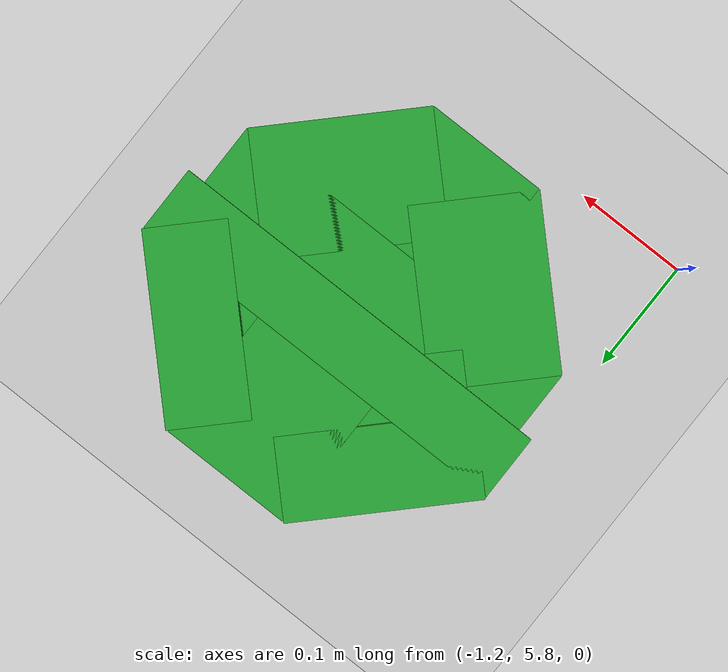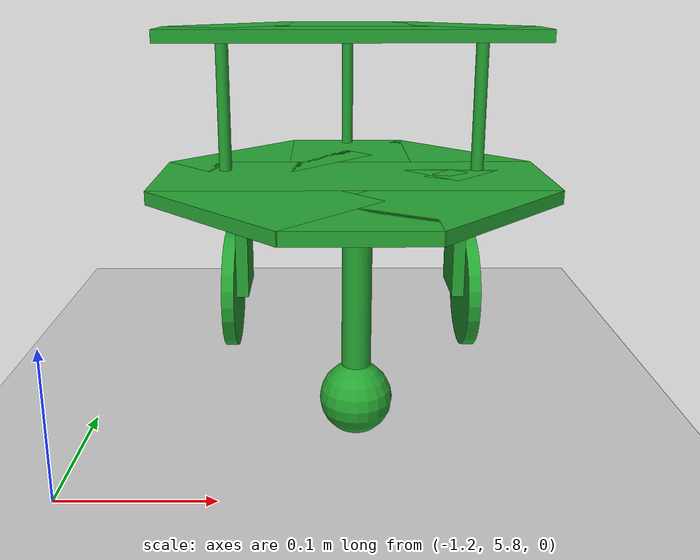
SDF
<sdf version="1.6">
 <world name="default">
  <model name="ground_plane">
   <static>1</static>
   <link name="link">
    <collision name="collision">
     <geometry><plane><normal>0 0 1</normal><size>100 100</size></plane></geometry>
     <surface><friction><ode><mu>100</mu><mu2>50</mu2></ode></friction></surface>
    </collision>
    <visual name="visual">
     <cast_shadows>0</cast_shadows>
     <geometry><plane><normal>0 0 1</normal><size>100 100</size></plane></geometry>
     <material>
      <script><uri>file://media/materials/scripts/gazebo.material</uri><name>Gazebo/Grey</name></script>
     </material>
    </visual>
   </link>
  </model>
  <model name="devRobot_0">
   <link name="base">
    <pose>0 0 0.155 0 -0 0</pose>
    <inertial>
     <mass>1.5</mass>
     <inertia>
      <ixx>0.166667</ixx>
      <ixy>0</ixy>
      <ixz>0</ixz>
      <iyy>0.166667</iyy>
      <iyz>0</iyz>
      <izz>0.166667</izz>
     </inertia>
    </inertial>
    <visual name="visual">
     <geometry><box><size>0.3 0.1 0.01</size></box></geometry>
     <material>
      <lighting>1</lighting>
      <script><uri>file://media/materials/scripts/gazebo.material</uri><name>Gazebo/Green</name></script>
      <shader type="pixel"><normal_map>__default__</normal_map></shader>
      <ambient>0 0.3 0 1</ambient>
      <diffuse>0 0.7 0 1</diffuse>
      <specular>0 0.01 0 1</specular>
      <emissive>0 0 0 1</emissive>
     </material>
    </visual>
    <collision name="collision">
     <geometry><box><size>0.3 0.1 0.01</size></box></geometry>
     <surface>
      <friction>
       <ode><mu>1</mu><mu2>1</mu2><fdir1>0 0 0</fdir1><slip1>0</slip1><slip2>0</slip2></ode>
       <torsional>
        <coefficient>1</coefficient>
        <patch_radius>0</patch_radius>
        <surface_radius>0</surface_radius>
        <use_patch_radius>1</use_patch_radius>
        <ode><slip>0</slip></ode>
       </torsional>
      </friction>
      <bounce><restitution_coefficient>0</restitution_coefficient><threshold>1e+06</threshold></bounce>
      <contact>
       <collide_without_contact>0</collide_without_contact>
       <collide_without_contact_bitmask>1</collide_without_contact_bitmask>
       <collide_bitmask>1</collide_bitmask>
       <ode>
        <soft_cfm>0</soft_cfm>
        <soft_erp>0.2</soft_erp>
        <kp>1e+13</kp>
        <kd>1</kd>
        <max_vel>0.01</max_vel>
        <min_depth>0</min_depth>
       </ode>
       <bullet>
        <split_impulse>1</split_impulse>
        <split_impulse_penetration_threshold>-0.01</split_impulse_penetration_threshold>
        <soft_cfm>0</soft_cfm>
        <soft_erp>0.2</soft_erp>
        <kp>1e+13</kp>
        <kd>1</kd>
       </bullet>
      </contact>
     </surface>
    </collision>
   </link>
   <link name="back">
    <pose>-0 -0.1 0.155 0 -0 0</pose>
    <inertial>
     <mass>2</mass>
     <inertia>
      <ixx>0.166667</ixx>
      <ixy>0</ixy>
      <ixz>0</ixz>
      <iyy>0.166667</iyy>
      <iyz>0</iyz>
      <izz>0.166667</izz>
     </inertia>
    </inertial>
    <visual name="visual">
     <geometry><box><size>0.1 0.1 0.01</size></box></geometry>
     <material>
      <lighting>1</lighting>
      <script><uri>file://media/materials/scripts/gazebo.material</uri><name>Gazebo/Green</name></script>
      <shader type="pixel"><normal_map>__default__</normal_map></shader>
      <ambient>0 0.3 0 1</ambient>
      <diffuse>0 0.7 0 1</diffuse>
      <specular>0 0.01 0 1</specular>
      <emissive>0 0 0 1</emissive>
     </material>
    </visual>
    <collision name="collision">
     <geometry><box><size>0.1 0.1 0.01</size></box></geometry>
     <surface>
      <friction>
       <ode><mu>1</mu><mu2>1</mu2><fdir1>0 0 0</fdir1><slip1>0</slip1><slip2>0</slip2></ode>
       <torsional>
        <coefficient>1</coefficient>
        <patch_radius>0</patch_radius>
        <surface_radius>0</surface_radius>
        <use_patch_radius>1</use_patch_radius>
        <ode><slip>0</slip></ode>
       </torsional>
      </friction>
      <bounce><restitution_coefficient>0</restitution_coefficient><threshold>1e+06</threshold></bounce>
      <contact>
       <collide_without_contact>0</collide_without_contact>
       <collide_without_contact_bitmask>1</collide_without_contact_bitmask>
       <collide_bitmask>1</collide_bitmask>
       <ode>
        <soft_cfm>0</soft_cfm>
        <soft_erp>0.2</soft_erp>
        <kp>1e+13</kp>
        <kd>1</kd>
        <max_vel>0.01</max_vel>
        <min_depth>0</min_depth>
       </ode>
       <bullet>
        <split_impulse>1</split_impulse>
        <split_impulse_penetration_threshold>-0.01</split_impulse_penetration_threshold>
        <soft_cfm>0</soft_cfm>
        <soft_erp>0.2</soft_erp>
        <kp>1e+13</kp>
        <kd>1</kd>
       </bullet>
      </contact>
     </surface>
    </collision>
   </link>
   <link name="backLeft">
    <pose>-0.065 -0.065 0.155 0 0 -0.78535</pose>
    <inertial>
     <mass>0.1</mass>
     <inertia>
      <ixx>0.166667</ixx>
      <ixy>0</ixy>
      <ixz>0</ixz>
      <iyy>0.166667</iyy>
      <iyz>0</iyz>
      <izz>0.166667</izz>
     </inertia>
    </inertial>
    <visual name="visual">
     <geometry><box><size>0.14 0.1 0.01</size></box></geometry>
     <material>
      <lighting>1</lighting>
      <script><uri>file://media/materials/scripts/gazebo.material</uri><name>Gazebo/Green</name></script>
      <shader type="pixel"><normal_map>__default__</normal_map></shader>
      <ambient>0 0.3 0 1</ambient>
      <diffuse>0 0.7 0 1</diffuse>
      <specular>0 0.01 0 1</specular>
      <emissive>0 0 0 1</emissive>
     </material>
    </visual>
    <collision name="collision">
     <geometry><box><size>0.14 0.1 0.01</size></box></geometry>
     <surface>
      <friction>
       <ode><mu>1</mu><mu2>1</mu2><fdir1>0 0 0</fdir1><slip1>0</slip1><slip2>0</slip2></ode>
       <torsional>
        <coefficient>1</coefficient>
        <patch_radius>0</patch_radius>
        <surface_radius>0</surface_radius>
        <use_patch_radius>1</use_patch_radius>
        <ode><slip>0</slip></ode>
       </torsional>
      </friction>
      <bounce><restitution_coefficient>0</restitution_coefficient><threshold>1e+06</threshold></bounce>
      <contact>
       <collide_without_contact>0</collide_without_contact>
       <collide_without_contact_bitmask>1</collide_without_contact_bitmask>
       <collide_bitmask>1</collide_bitmask>
       <ode>
        <soft_cfm>0</soft_cfm>
        <soft_erp>0.2</soft_erp>
        <kp>1e+13</kp>
        <kd>1</kd>
        <max_vel>0.01</max_vel>
        <min_depth>0</min_depth>
       </ode>
       <bullet>
        <split_impulse>1</split_impulse>
        <split_impulse_penetration_threshold>-0.01</split_impulse_penetration_threshold>
        <soft_cfm>0</soft_cfm>
        <soft_erp>0.2</soft_erp>
        <kp>1e+13</kp>
        <kd>1</kd>
       </bullet>
      </contact>
     </surface>
    </collision>
   </link>
   <link name="backRight">
    <pose>0.065 -0.065 0.155 0 -0 0.78535</pose>
    <inertial>
     <mass>0.1</mass>
     <inertia>
      <ixx>0.166667</ixx>
      <ixy>0</ixy>
      <ixz>0</ixz>
      <iyy>0.166667</iyy>
      <iyz>0</iyz>
      <izz>0.166667</izz>
     </inertia>
    </inertial>
    <visual name="visual">
     <geometry><box><size>0.14 0.1 0.01</size></box></geometry>
     <material>
      <lighting>1</lighting>
      <script><uri>file://media/materials/scripts/gazebo.material</uri><name>Gazebo/Green</name></script>
      <shader type="pixel"><normal_map>__default__</normal_map></shader>
      <ambient>0 0.3 0 1</ambient>
      <diffuse>0 0.7 0 1</diffuse>
      <specular>0 0.01 0 1</specular>
      <emissive>0 0 0 1</emissive>
     </material>
    </visual>
    <collision name="collision">
     <geometry><box><size>0.14 0.1 0.01</size></box></geometry>
     <surface>
      <friction>
       <ode><mu>1</mu><mu2>1</mu2><fdir1>0 0 0</fdir1><slip1>0</slip1><slip2>0</slip2></ode>
       <torsional>
        <coefficient>1</coefficient>
        <patch_radius>0</patch_radius>
        <surface_radius>0</surface_radius>
        <use_patch_radius>1</use_patch_radius>
        <ode><slip>0</slip></ode>
       </torsional>
      </friction>
      <bounce><restitution_coefficient>0</restitution_coefficient><threshold>1e+06</threshold></bounce>
      <contact>
       <collide_without_contact>0</collide_without_contact>
       <collide_without_contact_bitmask>1</collide_without_contact_bitmask>
       <collide_bitmask>1</collide_bitmask>
       <ode>
        <soft_cfm>0</soft_cfm>
        <soft_erp>0.2</soft_erp>
        <kp>1e+13</kp>
        <kd>1</kd>
        <max_vel>0.01</max_vel>
        <min_depth>0</min_depth>
       </ode>
       <bullet>
        <split_impulse>1</split_impulse>
        <split_impulse_penetration_threshold>-0.01</split_impulse_penetration_threshold>
        <soft_cfm>0</soft_cfm>
        <soft_erp>0.2</soft_erp>
        <kp>1e+13</kp>
        <kd>1</kd>
       </bullet>
      </contact>
     </surface>
    </collision>
   </link>
   <link name="front">
    <pose>-0 0.1 0.155 0 -0 0</pose>
    <inertial>
     <mass>0.1</mass>
     <inertia>
      <ixx>0.166667</ixx>
      <ixy>0</ixy>
      <ixz>0</ixz>
      <iyy>0.166667</iyy>
      <iyz>0</iyz>
      <izz>0.166667</izz>
     </inertia>
    </inertial>
    <visual name="visual">
     <geometry><box><size>0.1 0.1 0.01</size></box></geometry>
     <material>
      <lighting>1</lighting>
      <script><uri>file://media/materials/scripts/gazebo.material</uri><name>Gazebo/Green</name></script>
      <shader type="pixel"><normal_map>__default__</normal_map></shader>
      <ambient>0 0.3 0 1</ambient>
      <diffuse>0 0.7 0 1</diffuse>
      <specular>0 0.01 0 1</specular>
      <emissive>0 0 0 1</emissive>
     </material>
    </visual>
    <collision name="collision">
     <geometry><box><size>0.1 0.1 0.01</size></box></geometry>
     <surface>
      <friction>
       <ode><mu>1</mu><mu2>1</mu2><fdir1>0 0 0</fdir1><slip1>0</slip1><slip2>0</slip2></ode>
       <torsional>
        <coefficient>1</coefficient>
        <patch_radius>0</patch_radius>
        <surface_radius>0</surface_radius>
        <use_patch_radius>1</use_patch_radius>
        <ode><slip>0</slip></ode>
       </torsional>
      </friction>
      <bounce><restitution_coefficient>0</restitution_coefficient><threshold>1e+06</threshold></bounce>
      <contact>
       <collide_without_contact>0</collide_without_contact>
       <collide_without_contact_bitmask>1</collide_without_contact_bitmask>
       <collide_bitmask>1</collide_bitmask>
       <ode>
        <soft_cfm>0</soft_cfm>
        <soft_erp>0.2</soft_erp>
        <kp>1e+13</kp>
        <kd>1</kd>
        <max_vel>0.01</max_vel>
        <min_depth>0</min_depth>
       </ode>
       <bullet>
        <split_impulse>1</split_impulse>
        <split_impulse_penetration_threshold>-0.01</split_impulse_penetration_threshold>
        <soft_cfm>0</soft_cfm>
        <soft_erp>0.2</soft_erp>
        <kp>1e+13</kp>
        <kd>1</kd>
       </bullet>
      </contact>
     </surface>
    </collision>
   </link>
   <link name="frontLeft">
    <pose>-0.065 0.065 0.155 0 -0 0.78535</pose>
    <inertial>
     <mass>0.1</mass>
     <inertia>
      <ixx>0.166667</ixx>
      <ixy>0</ixy>
      <ixz>0</ixz>
      <iyy>0.166667</iyy>
      <iyz>0</iyz>
      <izz>0.166667</izz>
     </inertia>
    </inertial>
    <visual name="visual">
     <geometry><box><size>0.14 0.1 0.01</size></box></geometry>
     <material>
      <lighting>1</lighting>
      <script><uri>file://media/materials/scripts/gazebo.material</uri><name>Gazebo/Green</name></script>
      <shader type="pixel"><normal_map>__default__</normal_map></shader>
      <ambient>0 0.3 0 1</ambient>
      <diffuse>0 0.7 0 1</diffuse>
      <specular>0 0.01 0 1</specular>
      <emissive>0 0 0 1</emissive>
     </material>
    </visual>
    <collision name="collision">
     <geometry><box><size>0.14 0.1 0.01</size></box></geometry>
     <surface>
      <friction>
       <ode><mu>1</mu><mu2>1</mu2><fdir1>0 0 0</fdir1><slip1>0</slip1><slip2>0</slip2></ode>
       <torsional>
        <coefficient>1</coefficient>
        <patch_radius>0</patch_radius>
        <surface_radius>0</surface_radius>
        <use_patch_radius>1</use_patch_radius>
        <ode><slip>0</slip></ode>
       </torsional>
      </friction>
      <bounce><restitution_coefficient>0</restitution_coefficient><threshold>1e+06</threshold></bounce>
      <contact>
       <collide_without_contact>0</collide_without_contact>
       <collide_without_contact_bitmask>1</collide_without_contact_bitmask>
       <collide_bitmask>1</collide_bitmask>
       <ode>
        <soft_cfm>0</soft_cfm>
        <soft_erp>0.2</soft_erp>
        <kp>1e+13</kp>
        <kd>1</kd>
        <max_vel>0.01</max_vel>
        <min_depth>0</min_depth>
       </ode>
       <bullet>
        <split_impulse>1</split_impulse>
        <split_impulse_penetration_threshold>-0.01</split_impulse_penetration_threshold>
        <soft_cfm>0</soft_cfm>
        <soft_erp>0.2</soft_erp>
        <kp>1e+13</kp>
        <kd>1</kd>
       </bullet>
      </contact>
     </surface>
    </collision>
   </link>
   <link name="frontRight">
    <pose>0.065 0.065 0.155 0 0 -0.78535</pose>
    <inertial>
     <mass>0.1</mass>
     <inertia>
      <ixx>0.166667</ixx>
      <ixy>0</ixy>
      <ixz>0</ixz>
      <iyy>0.166667</iyy>
      <iyz>0</iyz>
      <izz>0.166667</izz>
     </inertia>
    </inertial>
    <visual name="visual">
     <geometry><box><size>0.14 0.1 0.01</size></box></geometry>
     <material>
      <lighting>1</lighting>
      <script><uri>file://media/materials/scripts/gazebo.material</uri><name>Gazebo/Green</name></script>
      <shader type="pixel"><normal_map>__default__</normal_map></shader>
      <ambient>0 0.3 0 1</ambient>
      <diffuse>0 0.7 0 1</diffuse>
      <specular>0 0.01 0 1</specular>
      <emissive>0 0 0 1</emissive>
     </material>
    </visual>
    <collision name="collision">
     <geometry><box><size>0.14 0.1 0.01</size></box></geometry>
     <surface>
      <friction>
       <ode><mu>1</mu><mu2>1</mu2><fdir1>0 0 0</fdir1><slip1>0</slip1><slip2>0</slip2></ode>
       <torsional>
        <coefficient>1</coefficient>
        <patch_radius>0</patch_radius>
        <surface_radius>0</surface_radius>
        <use_patch_radius>1</use_patch_radius>
        <ode><slip>0</slip></ode>
       </torsional>
      </friction>
      <bounce><restitution_coefficient>0</restitution_coefficient><threshold>1e+06</threshold></bounce>
      <contact>
       <collide_without_contact>0</collide_without_contact>
       <collide_without_contact_bitmask>1</collide_without_contact_bitmask>
       <collide_bitmask>1</collide_bitmask>
       <ode>
        <soft_cfm>0</soft_cfm>
        <soft_erp>0.2</soft_erp>
        <kp>1e+13</kp>
        <kd>1</kd>
        <max_vel>0.01</max_vel>
        <min_depth>0</min_depth>
       </ode>
       <bullet>
        <split_impulse>1</split_impulse>
        <split_impulse_penetration_threshold>-0.01</split_impulse_penetration_threshold>
        <soft_cfm>0</soft_cfm>
        <soft_erp>0.2</soft_erp>
        <kp>1e+13</kp>
        <kd>1</kd>
       </bullet>
      </contact>
     </surface>
    </collision>
   </link>
   <link name="link_0">
    <pose>0.1 0.05 0.05 -3e-06 1.5707 -3e-06</pose>
    <inertial>
     <mass>1</mass>
     <inertia><ixx>0.145833</ixx><ixy>0</ixy><ixz>0</ixz><iyy>0.145833</iyy><iyz>0</iyz><izz>0.125</izz></inertia>
    </inertial>
    <visual name="visual">
     <geometry><cylinder><radius>0.05</radius><length>0.01</length></cylinder></geometry>
     <material>
      <lighting>1</lighting>
      <script><uri>file://media/materials/scripts/gazebo.material</uri><name>Gazebo/Green</name></script>
      <shader type="pixel"><normal_map>__default__</normal_map></shader>
      <ambient>0 0.3 0 1</ambient>
      <diffuse>0 0.7 0 1</diffuse>
      <specular>0 0.01 0 1</specular>
      <emissive>0 0 0 1</emissive>
     </material>
    </visual>
    <collision name="collision">
     <geometry><cylinder><radius>0.05</radius><length>0.01</length></cylinder></geometry>
     <surface>
      <friction>
       <ode><mu>1</mu><mu2>1</mu2><fdir1>0 0 0</fdir1><slip1>0</slip1><slip2>0</slip2></ode>
       <torsional>
        <coefficient>1</coefficient>
        <patch_radius>0</patch_radius>
        <surface_radius>0</surface_radius>
        <use_patch_radius>1</use_patch_radius>
        <ode><slip>0</slip></ode>
       </torsional>
      </friction>
      <bounce><restitution_coefficient>0</restitution_coefficient><threshold>1e+06</threshold></bounce>
      <contact>
       <collide_without_contact>0</collide_without_contact>
       <collide_without_contact_bitmask>1</collide_without_contact_bitmask>
       <collide_bitmask>1</collide_bitmask>
       <ode>
        <soft_cfm>0</soft_cfm>
        <soft_erp>0.2</soft_erp>
        <kp>1e+13</kp>
        <kd>1</kd>
        <max_vel>0.01</max_vel>
        <min_depth>0</min_depth>
       </ode>
       <bullet>
        <split_impulse>1</split_impulse>
        <split_impulse_penetration_threshold>-0.01</split_impulse_penetration_threshold>
        <soft_cfm>0</soft_cfm>
        <soft_erp>0.2</soft_erp>
        <kp>1e+13</kp>
        <kd>1</kd>
       </bullet>
      </contact>
     </surface>
    </collision>
   </link>
   <link name="link_0_clone">
    <pose>-0.1 0.05 0.05 -3e-06 1.5707 -3e-06</pose>
    <inertial>
     <mass>1</mass>
     <inertia><ixx>0.145833</ixx><ixy>0</ixy><ixz>0</ixz><iyy>0.145833</iyy><iyz>0</iyz><izz>0.125</izz></inertia>
    </inertial>
    <visual name="visual">
     <geometry><cylinder><radius>0.05</radius><length>0.01</length></cylinder></geometry>
     <material>
      <lighting>1</lighting>
      <script><uri>file://media/materials/scripts/gazebo.material</uri><name>Gazebo/Green</name></script>
      <shader type="pixel"><normal_map>__default__</normal_map></shader>
      <ambient>0 0.3 0 1</ambient>
      <diffuse>0 0.7 0 1</diffuse>
      <specular>0 0.01 0 1</specular>
      <emissive>0 0 0 1</emissive>
     </material>
    </visual>
    <collision name="collision">
     <geometry><cylinder><radius>0.05</radius><length>0.01</length></cylinder></geometry>
     <surface>
      <friction>
       <ode><mu>1</mu><mu2>1</mu2><fdir1>0 0 0</fdir1><slip1>0</slip1><slip2>0</slip2></ode>
       <torsional>
        <coefficient>1</coefficient>
        <patch_radius>0</patch_radius>
        <surface_radius>0</surface_radius>
        <use_patch_radius>1</use_patch_radius>
        <ode><slip>0</slip></ode>
       </torsional>
      </friction>
      <bounce><restitution_coefficient>0</restitution_coefficient><threshold>1e+06</threshold></bounce>
      <contact>
       <collide_without_contact>0</collide_without_contact>
       <collide_without_contact_bitmask>1</collide_without_contact_bitmask>
       <collide_bitmask>1</collide_bitmask>
       <ode>
        <soft_cfm>0</soft_cfm>
        <soft_erp>0.2</soft_erp>
        <kp>1e+13</kp>
        <kd>1</kd>
        <max_vel>0.01</max_vel>
        <min_depth>0</min_depth>
       </ode>
       <bullet>
        <split_impulse>1</split_impulse>
        <split_impulse_penetration_threshold>-0.01</split_impulse_penetration_threshold>
        <soft_cfm>0</soft_cfm>
        <soft_erp>0.2</soft_erp>
        <kp>1e+13</kp>
        <kd>1</kd>
       </bullet>
      </contact>
     </surface>
    </collision>
   </link>
   <link name="link_1">
    <pose>0.09 0.05 0.1 0 -0 0</pose>
    <inertial>
     <mass>1</mass>
     <inertia>
      <ixx>0.166667</ixx>
      <ixy>0</ixy>
      <ixz>0</ixz>
      <iyy>0.166667</iyy>
      <iyz>0</iyz>
      <izz>0.166667</izz>
     </inertia>
    </inertial>
    <visual name="visual">
     <geometry><box><size>0.01 0.05 0.1</size></box></geometry>
     <material>
      <lighting>1</lighting>
      <script><uri>file://media/materials/scripts/gazebo.material</uri><name>Gazebo/Green</name></script>
      <shader type="pixel"><normal_map>__default__</normal_map></shader>
      <ambient>0 0.3 0 1</ambient>
      <diffuse>0 0.7 0 1</diffuse>
      <specular>0 0.01 0 1</specular>
      <emissive>0 0 0 1</emissive>
     </material>
    </visual>
    <collision name="collision">
     <geometry><box><size>0.01 0.05 0.1</size></box></geometry>
     <surface>
      <friction>
       <ode><mu>1</mu><mu2>1</mu2><fdir1>0 0 0</fdir1><slip1>0</slip1><slip2>0</slip2></ode>
       <torsional>
        <coefficient>1</coefficient>
        <patch_radius>0</patch_radius>
        <surface_radius>0</surface_radius>
        <use_patch_radius>1</use_patch_radius>
        <ode><slip>0</slip></ode>
       </torsional>
      </friction>
      <bounce><restitution_coefficient>0</restitution_coefficient><threshold>1e+06</threshold></bounce>
      <contact>
       <collide_without_contact>0</collide_without_contact>
       <collide_without_contact_bitmask>1</collide_without_contact_bitmask>
       <collide_bitmask>1</collide_bitmask>
       <ode>
        <soft_cfm>0</soft_cfm>
        <soft_erp>0.2</soft_erp>
        <kp>1e+13</kp>
        <kd>1</kd>
        <max_vel>0.01</max_vel>
        <min_depth>0</min_depth>
       </ode>
       <bullet>
        <split_impulse>1</split_impulse>
        <split_impulse_penetration_threshold>-0.01</split_impulse_penetration_threshold>
        <soft_cfm>0</soft_cfm>
        <soft_erp>0.2</soft_erp>
        <kp>1e+13</kp>
        <kd>1</kd>
       </bullet>
      </contact>
     </surface>
    </collision>
   </link>
   <link name="link_1_clone">
    <pose>-0.09 0.05 0.1 0 -0 0</pose>
    <inertial>
     <mass>1</mass>
     <inertia>
      <ixx>0.166667</ixx>
      <ixy>0</ixy>
      <ixz>0</ixz>
      <iyy>0.166667</iyy>
      <iyz>0</iyz>
      <izz>0.166667</izz>
     </inertia>
    </inertial>
    <visual name="visual">
     <geometry><box><size>0.01 0.05 0.1</size></box></geometry>
     <material>
      <lighting>1</lighting>
      <script><uri>file://media/materials/scripts/gazebo.material</uri><name>Gazebo/Green</name></script>
      <shader type="pixel"><normal_map>__default__</normal_map></shader>
      <ambient>0 0.3 0 1</ambient>
      <diffuse>0 0.7 0 1</diffuse>
      <specular>0 0.01 0 1</specular>
      <emissive>0 0 0 1</emissive>
     </material>
    </visual>
    <collision name="collision">
     <geometry><box><size>0.01 0.05 0.1</size></box></geometry>
     <surface>
      <friction>
       <ode><mu>1</mu><mu2>1</mu2><fdir1>0 0 0</fdir1><slip1>0</slip1><slip2>0</slip2></ode>
       <torsional>
        <coefficient>1</coefficient>
        <patch_radius>0</patch_radius>
        <surface_radius>0</surface_radius>
        <use_patch_radius>1</use_patch_radius>
        <ode><slip>0</slip></ode>
       </torsional>
      </friction>
      <bounce><restitution_coefficient>0</restitution_coefficient><threshold>1e+06</threshold></bounce>
      <contact>
       <collide_without_contact>0</collide_without_contact>
       <collide_without_contact_bitmask>1</collide_without_contact_bitmask>
       <collide_bitmask>1</collide_bitmask>
       <ode>
        <soft_cfm>0</soft_cfm>
        <soft_erp>0.2</soft_erp>
        <kp>1e+13</kp>
        <kd>1</kd>
        <max_vel>0.01</max_vel>
        <min_depth>0</min_depth>
       </ode>
       <bullet>
        <split_impulse>1</split_impulse>
        <split_impulse_penetration_threshold>-0.01</split_impulse_penetration_threshold>
        <soft_cfm>0</soft_cfm>
        <soft_erp>0.2</soft_erp>
        <kp>1e+13</kp>
        <kd>1</kd>
       </bullet>
      </contact>
     </surface>
    </collision>
   </link>
   <link name="link_2">
    <pose>-0 -0.1 0.1 0 -0 0</pose>
    <inertial>
     <mass>1</mass>
     <inertia><ixx>0.145833</ixx><ixy>0</ixy><ixz>0</ixz><iyy>0.145833</iyy><iyz>0</iyz><izz>0.125</izz></inertia>
    </inertial>
    <visual name="visual">
     <geometry><cylinder><radius>0.01</radius><length>0.1</length></cylinder></geometry>
     <material>
      <lighting>1</lighting>
      <script><uri>file://media/materials/scripts/gazebo.material</uri><name>Gazebo/Green</name></script>
      <shader type="pixel"><normal_map>__default__</normal_map></shader>
      <ambient>0 0.3 0 1</ambient>
      <diffuse>0 0.7 0 1</diffuse>
      <specular>0 0.01 0 1</specular>
      <emissive>0 0 0 1</emissive>
     </material>
    </visual>
    <collision name="collision">
     <geometry><cylinder><radius>0.01</radius><length>0.1</length></cylinder></geometry>
     <surface>
      <friction>
       <ode><mu>1</mu><mu2>1</mu2><fdir1>0 0 0</fdir1><slip1>0</slip1><slip2>0</slip2></ode>
       <torsional>
        <coefficient>1</coefficient>
        <patch_radius>0</patch_radius>
        <surface_radius>0</surface_radius>
        <use_patch_radius>1</use_patch_radius>
        <ode><slip>0</slip></ode>
       </torsional>
      </friction>
      <bounce><restitution_coefficient>0</restitution_coefficient><threshold>1e+06</threshold></bounce>
      <contact>
       <collide_without_contact>0</collide_without_contact>
       <collide_without_contact_bitmask>1</collide_without_contact_bitmask>
       <collide_bitmask>1</collide_bitmask>
       <ode>
        <soft_cfm>0</soft_cfm>
        <soft_erp>0.2</soft_erp>
        <kp>1e+13</kp>
        <kd>1</kd>
        <max_vel>0.01</max_vel>
        <min_depth>0</min_depth>
       </ode>
       <bullet>
        <split_impulse>1</split_impulse>
        <split_impulse_penetration_threshold>-0.01</split_impulse_penetration_threshold>
        <soft_cfm>0</soft_cfm>
        <soft_erp>0.2</soft_erp>
        <kp>1e+13</kp>
        <kd>1</kd>
       </bullet>
      </contact>
     </surface>
    </collision>
   </link>
   <link name="link_3">
    <pose>-0 -0.1 0.025 0 -0 0</pose>
    <inertial>
     <mass>1</mass>
     <inertia><ixx>0.1</ixx><ixy>0</ixy><ixz>0</ixz><iyy>0.1</iyy><iyz>0</iyz><izz>0.1</izz></inertia>
    </inertial>
    <visual name="visual">
     <geometry><sphere><radius>0.025</radius></sphere></geometry>
     <material>
      <lighting>1</lighting>
      <script><uri>file://media/materials/scripts/gazebo.material</uri><name>Gazebo/Green</name></script>
      <shader type="pixel"><normal_map>__default__</normal_map></shader>
      <ambient>0 0.3 0 1</ambient>
      <diffuse>0 0.7 0 1</diffuse>
      <specular>0 0.01 0 1</specular>
      <emissive>0 0 0 1</emissive>
     </material>
    </visual>
    <collision name="collision">
     <geometry><sphere><radius>0.025</radius></sphere></geometry>
     <surface>
      <friction>
       <ode><mu>1</mu><mu2>1</mu2><fdir1>0 0 0</fdir1><slip1>0</slip1><slip2>0</slip2></ode>
       <torsional>
        <coefficient>1</coefficient>
        <patch_radius>0</patch_radius>
        <surface_radius>0</surface_radius>
        <use_patch_radius>1</use_patch_radius>
        <ode><slip>0</slip></ode>
       </torsional>
      </friction>
      <bounce><restitution_coefficient>0</restitution_coefficient><threshold>1e+06</threshold></bounce>
      <contact>
       <collide_without_contact>0</collide_without_contact>
       <collide_without_contact_bitmask>1</collide_without_contact_bitmask>
       <collide_bitmask>1</collide_bitmask>
       <ode>
        <soft_cfm>0</soft_cfm>
        <soft_erp>0.2</soft_erp>
        <kp>1e+13</kp>
        <kd>1</kd>
        <max_vel>0.01</max_vel>
        <min_depth>0</min_depth>
       </ode>
       <bullet>
        <split_impulse>1</split_impulse>
        <split_impulse_penetration_threshold>-0.01</split_impulse_penetration_threshold>
        <soft_cfm>0</soft_cfm>
        <soft_erp>0.2</soft_erp>
        <kp>1e+13</kp>
        <kd>1</kd>
       </bullet>
      </contact>
     </surface>
    </collision>
   </link>
   <link name="spaceholder">
    <pose>0 0.14 0.21 0 -0 0</pose>
    <inertial>
     <mass>0.1</mass>
     <inertia><ixx>0.145833</ixx><ixy>0</ixy><ixz>0</ixz><iyy>0.145833</iyy><iyz>0</iyz><izz>0.125</izz></inertia>
    </inertial>
    <visual name="visual">
     <geometry><cylinder><radius>0.005</radius><length>0.1</length></cylinder></geometry>
     <material>
      <lighting>1</lighting>
      <script><uri>file://media/materials/scripts/gazebo.material</uri><name>Gazebo/Green</name></script>
      <shader type="pixel"><normal_map>__default__</normal_map></shader>
      <ambient>0 0.3 0 1</ambient>
      <diffuse>0 0.7 0 1</diffuse>
      <specular>0 0.01 0 1</specular>
      <emissive>0 0 0 1</emissive>
     </material>
    </visual>
    <collision name="collision">
     <geometry><cylinder><radius>0.005</radius><length>0.1</length></cylinder></geometry>
     <surface>
      <friction>
       <ode><mu>1</mu><mu2>1</mu2><fdir1>0 0 0</fdir1><slip1>0</slip1><slip2>0</slip2></ode>
       <torsional>
        <coefficient>1</coefficient>
        <patch_radius>0</patch_radius>
        <surface_radius>0</surface_radius>
        <use_patch_radius>1</use_patch_radius>
        <ode><slip>0</slip></ode>
       </torsional>
      </friction>
      <bounce><restitution_coefficient>0</restitution_coefficient><threshold>1e+06</threshold></bounce>
      <contact>
       <collide_without_contact>0</collide_without_contact>
       <collide_without_contact_bitmask>1</collide_without_contact_bitmask>
       <collide_bitmask>1</collide_bitmask>
       <ode>
        <soft_cfm>0</soft_cfm>
        <soft_erp>0.2</soft_erp>
        <kp>1e+13</kp>
        <kd>1</kd>
        <max_vel>0.01</max_vel>
        <min_depth>0</min_depth>
       </ode>
       <bullet>
        <split_impulse>1</split_impulse>
        <split_impulse_penetration_threshold>-0.01</split_impulse_penetration_threshold>
        <soft_cfm>0</soft_cfm>
        <soft_erp>0.2</soft_erp>
        <kp>1e+13</kp>
        <kd>1</kd>
       </bullet>
      </contact>
     </surface>
    </collision>
   </link>
   <link name="spaceholder_1">
    <pose>0.1 0.02 0.21 0 -0 0</pose>
    <inertial>
     <mass>0.1</mass>
     <inertia><ixx>0.145833</ixx><ixy>0</ixy><ixz>0</ixz><iyy>0.145833</iyy><iyz>0</iyz><izz>0.125</izz></inertia>
    </inertial>
    <visual name="visual">
     <geometry><cylinder><radius>0.005</radius><length>0.1</length></cylinder></geometry>
     <material>
      <lighting>1</lighting>
      <script><uri>file://media/materials/scripts/gazebo.material</uri><name>Gazebo/Green</name></script>
      <shader type="pixel"><normal_map>__default__</normal_map></shader>
      <ambient>0 0.3 0 1</ambient>
      <diffuse>0 0.7 0 1</diffuse>
      <specular>0 0.01 0 1</specular>
      <emissive>0 0 0 1</emissive>
     </material>
    </visual>
    <collision name="collision">
     <geometry><cylinder><radius>0.005</radius><length>0.1</length></cylinder></geometry>
     <surface>
      <friction>
       <ode><mu>1</mu><mu2>1</mu2><fdir1>0 0 0</fdir1><slip1>0</slip1><slip2>0</slip2></ode>
       <torsional>
        <coefficient>1</coefficient>
        <patch_radius>0</patch_radius>
        <surface_radius>0</surface_radius>
        <use_patch_radius>1</use_patch_radius>
        <ode><slip>0</slip></ode>
       </torsional>
      </friction>
      <bounce><restitution_coefficient>0</restitution_coefficient><threshold>1e+06</threshold></bounce>
      <contact>
       <collide_without_contact>0</collide_without_contact>
       <collide_without_contact_bitmask>1</collide_without_contact_bitmask>
       <collide_bitmask>1</collide_bitmask>
       <ode>
        <soft_cfm>0</soft_cfm>
        <soft_erp>0.2</soft_erp>
        <kp>1e+13</kp>
        <kd>1</kd>
        <max_vel>0.01</max_vel>
        <min_depth>0</min_depth>
       </ode>
       <bullet>
        <split_impulse>1</split_impulse>
        <split_impulse_penetration_threshold>-0.01</split_impulse_penetration_threshold>
        <soft_cfm>0</soft_cfm>
        <soft_erp>0.2</soft_erp>
        <kp>1e+13</kp>
        <kd>1</kd>
       </bullet>
      </contact>
     </surface>
    </collision>
   </link>
   <link name="spaceholder_2">
    <pose>-0.1 0.02 0.21 0 -0 0</pose>
    <inertial>
     <mass>0.1</mass>
     <inertia><ixx>0.145833</ixx><ixy>0</ixy><ixz>0</ixz><iyy>0.145833</iyy><iyz>0</iyz><izz>0.125</izz></inertia>
    </inertial>
    <visual name="visual">
     <geometry><cylinder><radius>0.005</radius><length>0.1</length></cylinder></geometry>
     <material>
      <lighting>1</lighting>
      <script><uri>file://media/materials/scripts/gazebo.material</uri><name>Gazebo/Green</name></script>
      <shader type="pixel"><normal_map>__default__</normal_map></shader>
      <ambient>0 0.3 0 1</ambient>
      <diffuse>0 0.7 0 1</diffuse>
      <specular>0 0.01 0 1</specular>
      <emissive>0 0 0 1</emissive>
     </material>
    </visual>
    <collision name="collision">
     <geometry><cylinder><radius>0.005</radius><length>0.1</length></cylinder></geometry>
     <surface>
      <friction>
       <ode><mu>1</mu><mu2>1</mu2><fdir1>0 0 0</fdir1><slip1>0</slip1><slip2>0</slip2></ode>
       <torsional>
        <coefficient>1</coefficient>
        <patch_radius>0</patch_radius>
        <surface_radius>0</surface_radius>
        <use_patch_radius>1</use_patch_radius>
        <ode><slip>0</slip></ode>
       </torsional>
      </friction>
      <bounce><restitution_coefficient>0</restitution_coefficient><threshold>1e+06</threshold></bounce>
      <contact>
       <collide_without_contact>0</collide_without_contact>
       <collide_without_contact_bitmask>1</collide_without_contact_bitmask>
       <collide_bitmask>1</collide_bitmask>
       <ode>
        <soft_cfm>0</soft_cfm>
        <soft_erp>0.2</soft_erp>
        <kp>1e+13</kp>
        <kd>1</kd>
        <max_vel>0.01</max_vel>
        <min_depth>0</min_depth>
       </ode>
       <bullet>
        <split_impulse>1</split_impulse>
        <split_impulse_penetration_threshold>-0.01</split_impulse_penetration_threshold>
        <soft_cfm>0</soft_cfm>
        <soft_erp>0.2</soft_erp>
        <kp>1e+13</kp>
        <kd>1</kd>
       </bullet>
      </contact>
     </surface>
    </collision>
   </link>
   <link name="topFront">
    <pose>-0 0.1 0.265 0 -0 0</pose>
    <inertial>
     <mass>0.1</mass>
     <inertia>
      <ixx>0.166667</ixx>
      <ixy>0</ixy>
      <ixz>0</ixz>
      <iyy>0.166667</iyy>
      <iyz>0</iyz>
      <izz>0.166667</izz>
     </inertia>
    </inertial>
    <visual name="visual">
     <geometry><box><size>0.1 0.1 0.01</size></box></geometry>
     <material>
      <lighting>1</lighting>
      <script><uri>file://media/materials/scripts/gazebo.material</uri><name>Gazebo/Green</name></script>
      <shader type="pixel"><normal_map>__default__</normal_map></shader>
      <ambient>0 0.3 0 1</ambient>
      <diffuse>0 0.7 0 1</diffuse>
      <specular>0 0.01 0 1</specular>
      <emissive>0 0 0 1</emissive>
     </material>
    </visual>
    <collision name="collision">
     <geometry><box><size>0.1 0.1 0.01</size></box></geometry>
     <surface>
      <friction>
       <ode><mu>1</mu><mu2>1</mu2><fdir1>0 0 0</fdir1><slip1>0</slip1><slip2>0</slip2></ode>
       <torsional>
        <coefficient>1</coefficient>
        <patch_radius>0</patch_radius>
        <surface_radius>0</surface_radius>
        <use_patch_radius>1</use_patch_radius>
        <ode><slip>0</slip></ode>
       </torsional>
      </friction>
      <bounce><restitution_coefficient>0</restitution_coefficient><threshold>1e+06</threshold></bounce>
      <contact>
       <collide_without_contact>0</collide_without_contact>
       <collide_without_contact_bitmask>1</collide_without_contact_bitmask>
       <collide_bitmask>1</collide_bitmask>
       <ode>
        <soft_cfm>0</soft_cfm>
        <soft_erp>0.2</soft_erp>
        <kp>1e+13</kp>
        <kd>1</kd>
        <max_vel>0.01</max_vel>
        <min_depth>0</min_depth>
       </ode>
       <bullet>
        <split_impulse>1</split_impulse>
        <split_impulse_penetration_threshold>-0.01</split_impulse_penetration_threshold>
        <soft_cfm>0</soft_cfm>
        <soft_erp>0.2</soft_erp>
        <kp>1e+13</kp>
        <kd>1</kd>
       </bullet>
      </contact>
     </surface>
    </collision>
   </link>
   <link name="topFrontLeft">
    <pose>-0.08 0.08 0.265 0 -0 0.78535</pose>
    <inertial>
     <mass>0.1</mass>
     <inertia>
      <ixx>0.166667</ixx>
      <ixy>0</ixy>
      <ixz>0</ixz>
      <iyy>0.166667</iyy>
      <iyz>0</iyz>
      <izz>0.166667</izz>
     </inertia>
    </inertial>
    <visual name="visual">
     <geometry><box><size>0.14 0.06 0.01</size></box></geometry>
     <material>
      <lighting>1</lighting>
      <script><uri>file://media/materials/scripts/gazebo.material</uri><name>Gazebo/Green</name></script>
      <shader type="pixel"><normal_map>__default__</normal_map></shader>
      <ambient>0 0.3 0 1</ambient>
      <diffuse>0 0.7 0 1</diffuse>
      <specular>0 0.01 0 1</specular>
      <emissive>0 0 0 1</emissive>
     </material>
    </visual>
    <collision name="collision">
     <geometry><box><size>0.14 0.06 0.01</size></box></geometry>
     <surface>
      <friction>
       <ode><mu>1</mu><mu2>1</mu2><fdir1>0 0 0</fdir1><slip1>0</slip1><slip2>0</slip2></ode>
       <torsional>
        <coefficient>1</coefficient>
        <patch_radius>0</patch_radius>
        <surface_radius>0</surface_radius>
        <use_patch_radius>1</use_patch_radius>
        <ode><slip>0</slip></ode>
       </torsional>
      </friction>
      <bounce><restitution_coefficient>0</restitution_coefficient><threshold>1e+06</threshold></bounce>
      <contact>
       <collide_without_contact>0</collide_without_contact>
       <collide_without_contact_bitmask>1</collide_without_contact_bitmask>
       <collide_bitmask>1</collide_bitmask>
       <ode>
        <soft_cfm>0</soft_cfm>
        <soft_erp>0.2</soft_erp>
        <kp>1e+13</kp>
        <kd>1</kd>
        <max_vel>0.01</max_vel>
        <min_depth>0</min_depth>
       </ode>
       <bullet>
        <split_impulse>1</split_impulse>
        <split_impulse_penetration_threshold>-0.01</split_impulse_penetration_threshold>
        <soft_cfm>0</soft_cfm>
        <soft_erp>0.2</soft_erp>
        <kp>1e+13</kp>
        <kd>1</kd>
       </bullet>
      </contact>
     </surface>
    </collision>
   </link>
   <link name="topFrontRight">
    <pose>0.08 0.08 0.265 0 0 -0.78535</pose>
    <inertial>
     <mass>0.1</mass>
     <inertia>
      <ixx>0.166667</ixx>
      <ixy>0</ixy>
      <ixz>0</ixz>
      <iyy>0.166667</iyy>
      <iyz>0</iyz>
      <izz>0.166667</izz>
     </inertia>
    </inertial>
    <visual name="visual">
     <geometry><box><size>0.14 0.06 0.01</size></box></geometry>
     <material>
      <lighting>1</lighting>
      <script><uri>file://media/materials/scripts/gazebo.material</uri><name>Gazebo/Green</name></script>
      <shader type="pixel"><normal_map>__default__</normal_map></shader>
      <ambient>0 0.3 0 1</ambient>
      <diffuse>0 0.7 0 1</diffuse>
      <specular>0 0.01 0 1</specular>
      <emissive>0 0 0 1</emissive>
     </material>
    </visual>
    <collision name="collision">
     <geometry><box><size>0.14 0.06 0.01</size></box></geometry>
     <surface>
      <friction>
       <ode><mu>1</mu><mu2>1</mu2><fdir1>0 0 0</fdir1><slip1>0</slip1><slip2>0</slip2></ode>
       <torsional>
        <coefficient>1</coefficient>
        <patch_radius>0</patch_radius>
        <surface_radius>0</surface_radius>
        <use_patch_radius>1</use_patch_radius>
        <ode><slip>0</slip></ode>
       </torsional>
      </friction>
      <bounce><restitution_coefficient>0</restitution_coefficient><threshold>1e+06</threshold></bounce>
      <contact>
       <collide_without_contact>0</collide_without_contact>
       <collide_without_contact_bitmask>1</collide_without_contact_bitmask>
       <collide_bitmask>1</collide_bitmask>
       <ode>
        <soft_cfm>0</soft_cfm>
        <soft_erp>0.2</soft_erp>
        <kp>1e+13</kp>
        <kd>1</kd>
        <max_vel>0.01</max_vel>
        <min_depth>0</min_depth>
       </ode>
       <bullet>
        <split_impulse>1</split_impulse>
        <split_impulse_penetration_threshold>-0.01</split_impulse_penetration_threshold>
        <soft_cfm>0</soft_cfm>
        <soft_erp>0.2</soft_erp>
        <kp>1e+13</kp>
        <kd>1</kd>
       </bullet>
      </contact>
     </surface>
    </collision>
   </link>
   <link name="topplate">
    <pose>0 -0 0.265 0 -0 0</pose>
    <inertial>
     <mass>0.1</mass>
     <inertia>
      <ixx>0.166667</ixx>
      <ixy>0</ixy>
      <ixz>0</ixz>
      <iyy>0.166667</iyy>
      <iyz>0</iyz>
      <izz>0.166667</izz>
     </inertia>
    </inertial>
    <visual name="visual">
     <pose>0 0.025 0 0 -0 0</pose>
     <geometry><box><size>0.3 0.05 0.01</size></box></geometry>
     <material>
      <lighting>1</lighting>
      <script><uri>file://media/materials/scripts/gazebo.material</uri><name>Gazebo/Green</name></script>
      <shader type="pixel"><normal_map>__default__</normal_map></shader>
      <ambient>0 0.3 0 1</ambient>
      <diffuse>0 0.7 0 1</diffuse>
      <specular>0 0.01 0 1</specular>
      <emissive>0 0 0 1</emissive>
     </material>
    </visual>
    <collision name="collision">
     <pose>0 0.025 0 0 -0 0</pose>
     <geometry><box><size>0.3 0.05 0.01</size></box></geometry>
     <surface>
      <friction>
       <ode><mu>1</mu><mu2>1</mu2><fdir1>0 0 0</fdir1><slip1>0</slip1><slip2>0</slip2></ode>
       <torsional>
        <coefficient>1</coefficient>
        <patch_radius>0</patch_radius>
        <surface_radius>0</surface_radius>
        <use_patch_radius>1</use_patch_radius>
        <ode><slip>0</slip></ode>
       </torsional>
      </friction>
      <bounce><restitution_coefficient>0</restitution_coefficient><threshold>1e+06</threshold></bounce>
      <contact>
       <collide_without_contact>0</collide_without_contact>
       <collide_without_contact_bitmask>1</collide_without_contact_bitmask>
       <collide_bitmask>1</collide_bitmask>
       <ode>
        <soft_cfm>0</soft_cfm>
        <soft_erp>0.2</soft_erp>
        <kp>1e+13</kp>
        <kd>1</kd>
        <max_vel>0.01</max_vel>
        <min_depth>0</min_depth>
       </ode>
       <bullet>
        <split_impulse>1</split_impulse>
        <split_impulse_penetration_threshold>-0.01</split_impulse_penetration_threshold>
        <soft_cfm>0</soft_cfm>
        <soft_erp>0.2</soft_erp>
        <kp>1e+13</kp>
        <kd>1</kd>
       </bullet>
      </contact>
     </surface>
    </collision>
   </link>
   <joint name="back_JOINT_4" type="fixed">
    <parent>back</parent>
    <child>link_2</child>
    <physics>
     <ode><limit><cfm>0</cfm><erp>0.2</erp></limit><suspension><cfm>0</cfm><erp>0.2</erp></suspension></ode>
    </physics>
   </joint>
   <joint name="base_JOINT_0" type="fixed">
    <parent>base</parent>
    <child>link_1_clone</child>
    <physics>
     <ode><limit><cfm>0</cfm><erp>0.2</erp></limit><suspension><cfm>0</cfm><erp>0.2</erp></suspension></ode>
    </physics>
   </joint>
   <joint name="base_JOINT_11" type="fixed">
    <parent>base</parent>
    <child>back</child>
    <physics>
     <ode><limit><cfm>0</cfm><erp>0.2</erp></limit><suspension><cfm>0</cfm><erp>0.2</erp></suspension></ode>
    </physics>
   </joint>
   <joint name="base_JOINT_12" type="fixed">
    <parent>base</parent>
    <child>frontRight</child>
    <physics>
     <ode><limit><cfm>0</cfm><erp>0.2</erp></limit><suspension><cfm>0</cfm><erp>0.2</erp></suspension></ode>
    </physics>
   </joint>
   <joint name="base_JOINT_13" type="fixed">
    <parent>base</parent>
    <child>backLeft</child>
    <physics>
     <ode><limit><cfm>0</cfm><erp>0.2</erp></limit><suspension><cfm>0</cfm><erp>0.2</erp></suspension></ode>
    </physics>
   </joint>
   <joint name="base_JOINT_14" type="fixed">
    <parent>base</parent>
    <child>backRight</child>
    <physics>
     <ode><limit><cfm>0</cfm><erp>0.2</erp></limit><suspension><cfm>0</cfm><erp>0.2</erp></suspension></ode>
    </physics>
   </joint>
   <joint name="base_JOINT_15" type="fixed">
    <parent>base</parent>
    <child>frontLeft</child>
    <physics>
     <ode><limit><cfm>0</cfm><erp>0.2</erp></limit><suspension><cfm>0</cfm><erp>0.2</erp></suspension></ode>
    </physics>
   </joint>
   <joint name="base_JOINT_1" type="fixed">
    <parent>base</parent>
    <child>link_1</child>
    <physics>
     <ode><limit><cfm>0</cfm><erp>0.2</erp></limit><suspension><cfm>0</cfm><erp>0.2</erp></suspension></ode>
    </physics>
   </joint>
   <joint name="base_JOINT_23" type="fixed">
    <parent>base</parent>
    <child>topplate</child>
    <physics>
     <ode><limit><cfm>0</cfm><erp>0.2</erp></limit><suspension><cfm>0</cfm><erp>0.2</erp></suspension></ode>
    </physics>
   </joint>
   <joint name="base_front_JOINT" type="fixed">
    <parent>base</parent>
    <child>front</child>
    <physics>
     <ode><limit><cfm>0</cfm><erp>0.2</erp></limit><suspension><cfm>0</cfm><erp>0.2</erp></suspension></ode>
    </physics>
   </joint>
   <joint name="link_1_JOINT_2" type="revolute">
    <parent>link_1</parent>
    <child>link_0</child>
    <axis>
     <xyz>0 0 1</xyz>
     <use_parent_model_frame>0</use_parent_model_frame>
     <limit>
      <lower>-1.79769e+308</lower>
      <upper>1.79769e+308</upper>
      <effort>-1</effort>
      <velocity>-1</velocity>
     </limit>
     <dynamics>
      <spring_reference>0</spring_reference>
      <spring_stiffness>0</spring_stiffness>
      <damping>0</damping>
      <friction>0</friction>
     </dynamics>
    </axis>
    <physics>
     <ode><limit><cfm>0</cfm><erp>0.2</erp></limit><suspension><cfm>0</cfm><erp>0.2</erp></suspension></ode>
    </physics>
   </joint>
   <joint name="link_1_clone_JOINT_3" type="revolute">
    <parent>link_1_clone</parent>
    <child>link_0_clone</child>
    <axis>
     <xyz>0 0 1</xyz>
     <use_parent_model_frame>0</use_parent_model_frame>
     <limit>
      <lower>-1.79769e+308</lower>
      <upper>1.79769e+308</upper>
      <effort>-1</effort>
      <velocity>-1</velocity>
     </limit>
     <dynamics>
      <spring_reference>0</spring_reference>
      <spring_stiffness>0</spring_stiffness>
      <damping>0</damping>
      <friction>0</friction>
     </dynamics>
    </axis>
    <physics>
     <ode><limit><cfm>0</cfm><erp>0.2</erp></limit><suspension><cfm>0</cfm><erp>0.2</erp></suspension></ode>
    </physics>
   </joint>
   <joint name="link_2_JOINT_5" type="ball">
    <parent>link_2</parent>
    <child>link_3</child>
    <physics>
     <ode><limit><cfm>0</cfm><erp>0.2</erp></limit><suspension><cfm>0</cfm><erp>0.2</erp></suspension></ode>
    </physics>
   </joint>
   <joint name="topFront_JOINT_22" type="fixed">
    <parent>topFront</parent>
    <child>spaceholder</child>
    <physics>
     <ode><limit><cfm>0</cfm><erp>0.2</erp></limit><suspension><cfm>0</cfm><erp>0.2</erp></suspension></ode>
    </physics>
   </joint>
   <joint name="topplate_JOINT_16" type="fixed">
    <parent>topplate</parent>
    <child>topFront</child>
    <physics>
     <ode><limit><cfm>0</cfm><erp>0.2</erp></limit><suspension><cfm>0</cfm><erp>0.2</erp></suspension></ode>
    </physics>
   </joint>
   <joint name="topplate_JOINT_17" type="fixed">
    <parent>topplate</parent>
    <child>topFrontRight</child>
    <physics>
     <ode><limit><cfm>0</cfm><erp>0.2</erp></limit><suspension><cfm>0</cfm><erp>0.2</erp></suspension></ode>
    </physics>
   </joint>
   <joint name="topplate_JOINT_18" type="fixed">
    <parent>topplate</parent>
    <child>topFrontLeft</child>
    <physics>
     <ode><limit><cfm>0</cfm><erp>0.2</erp></limit><suspension><cfm>0</cfm><erp>0.2</erp></suspension></ode>
    </physics>
   </joint>
   <joint name="topplate_JOINT_19" type="fixed">
    <parent>topplate</parent>
    <child>spaceholder_1</child>
    <physics>
     <ode><limit><cfm>0</cfm><erp>0.2</erp></limit><suspension><cfm>0</cfm><erp>0.2</erp></suspension></ode>
    </physics>
   </joint>
   <joint name="topplate_JOINT_21" type="fixed">
    <parent>topplate</parent>
    <child>spaceholder_2</child>
    <physics>
     <ode><limit><cfm>0</cfm><erp>0.2</erp></limit><suspension><cfm>0</cfm><erp>0.2</erp></suspension></ode>
    </physics>
   </joint>
   <static>0</static>
   <pose>-1.01485 5.9849 -1e-06 3.4e-05 2.3e-05 0.005826</pose>
  </model>
 </world>
</sdf>
